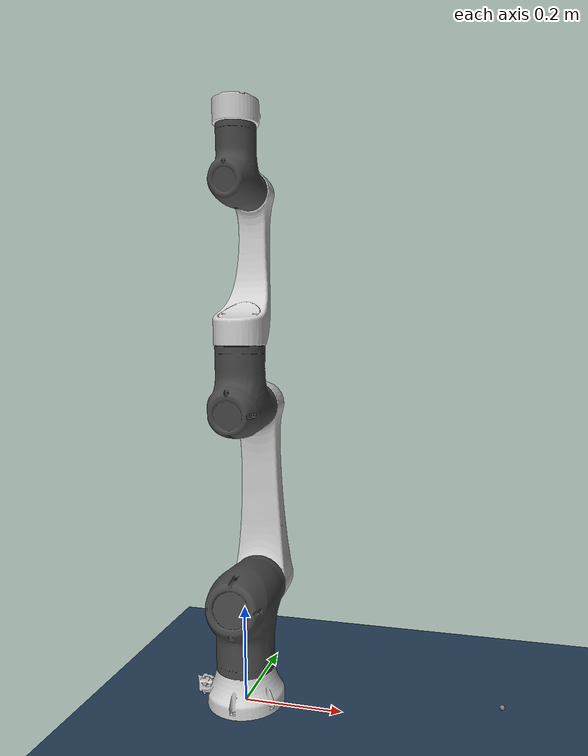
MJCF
<mujoco model="robot scene">
  <option cone="elliptic" impratio="10"/>
  <option integrator="implicitfast"/>

  <include file="elfin5.xml"/>

  <statistic center="0.4 0 0.4" extent="1"/>

  <visual>
    <headlight diffuse="0.6 0.6 0.6" ambient="0.1 0.1 0.1" specular="0 0 0"/>
    <rgba haze="0.15 0.25 0.35 1"/>
    <global azimuth="120" elevation="-20"/>
  </visual>

  <asset>
    <texture type="skybox" builtin="gradient" rgb1="0.3 0.5 0.7" rgb2="0 0 0" width="512" height="3072"/>
    <texture type="2d" name="groundplane" builtin="checker" mark="edge" rgb1="0.2 0.3 0.4" rgb2="0.1 0.2 0.3"
      markrgb="0.8 0.8 0.8" width="300" height="300"/>
    <material name="groundplane" texture="groundplane" texuniform="true" texrepeat="5 5" reflectance="0.2"/>
  </asset>

  <worldbody>
    <light pos="0 0 1.5" dir="0 0 -1" directional="true"/>
    <geom name="floor" size="0 0 0.05" type="plane" material="groundplane"/>
	<site name="prop_site" pos="0.51 0 0.052"/>
  </worldbody>
  <keyframe>
	  <key name="home"
		  ctrl="0 0.48 -1.5708 0 1.5708 0"/>
  </keyframe>
</mujoco>

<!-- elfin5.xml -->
<mujoco model="elfin5">
  <compiler angle="radian" meshdir="assets" autolimits="true"/>
  <option cone="elliptic" impratio="10"/>
  <option integrator="implicitfast"/>

  <default>
    <default class="elfin5">
      <material specular="0.5" shininess="0.25"/>
      <joint axis="0 0 1" range="-3.14 3.14" armature="0.1"/>
      <position ctrlrange="-3.14 3.14"/>
      <general biastype="affine" ctrlrange="-3.14 3.14" gainprm="5000" biasprm="0 -5000 -500"/>
      <default class="size4">
        <joint damping="10"/>
        <general forcerange="-200 200"/>
        <default class="size4_235">
          <joint range="-2.35 2.35"/>
          <general ctrlrange="-2.35 2.35"/>
        </default>
        <default class="size4_261">
          <joint range="-2.61 2.61"/>
          <general ctrlrange="-2.61 2.61"/>
        </default>
      </default>
      <default class="size3">
        <joint damping="5"/>
        <general forcerange="-104 104"/>
      </default>
      <default class="size2">
        <joint damping="2"/>
        <general forcerange="-34 34"/>
        <default class="size2_256">
          <joint range="-2.56 2.56"/>
          <general ctrlrange="-2.56 2.56"/>
        </default>
      </default>
      <default class="visual">
        <geom type="mesh" contype="0" conaffinity="0" group="2"/>
      </default>
      <default class="collision">
        <geom type="mesh" group="3"/>
        <default class="eef_collision">
          <geom type="cylinder"/>
        </default>
      </default>
      <site size="0.001" rgba="0.5 0.5 0.5 0.3" group="4"/>
    </default>
  </default>

  <asset>
    <material class="elfin5" name="black" rgba="0.033 0.033 0.033 1"/>
    <material class="elfin5" name="jointgray" rgba="0.278 0.278 0.278 1"/>
    <material class="elfin5" name="linkgray" rgba="0.82 0.82 0.82 1"/>
    <material class="elfin5" name="urblue" rgba="0.49 0.678 0.8 1"/>

    <mesh file="elfin_base.obj"/>
    <mesh file="elfin_link1.obj"/>
    <mesh file="elfin_link2.obj"/>
    <mesh file="elfin_link3.obj"/>
    <mesh file="elfin_link4.obj"/>
    <mesh file="elfin_link5.obj"/>
    <mesh file="elfin_link6.obj"/>
  </asset>

  <worldbody>
    <light name="spotlight" mode="targetbodycom" target="elfin_link5" pos="0 -1 2"/>
    <body name="elfin_base" pos="0 0 0" quat="1 0 0 -1" childclass="elfin5">
      <inertial mass="2.13370989" pos="0.00022102 0.0013404 0.025529" diaginertia="0.0041550303 0.0040358799 0.0070803951"/>
      <geom mesh="elfin_base" material="linkgray" class="visual"/>
      <body name="elfin_link1" pos="0 0 0.0735">
        <inertial pos="-0.021815 -1.1609E-05 0.095394" mass="7.96222548" diaginertia="0.0222824535 0.0401380494 0.0473608317"/>
        <joint name="shoulder_pan_joint" class="size4" axis="0 0 1"/>
        <geom mesh="elfin_link1" material="jointgray" class="visual"/>
		<geom name="elfin/link1" mesh="elfin_link1" class="collision"/>
		<geom name="base_pan" class="collision" type="cylinder" size="0.08 0.036" pos="0 0 -0.036"/>
        <body name="elfin_link2" pos="-0.078 0 0.1465" euler="1.3734 -1.5708 -1.5708">
          <inertial pos="-0.15508 0.031021 0.052499" mass="3.73459563" diaginertia="0.0051960204 0.091957473 0.0909910446"/>
          <joint name="shoulder_lift_joint" class="size4_235" axis="0 0 1"/>
          <geom mesh="elfin_link2" material="linkgray" class="visual"/>
		  <geom name="elfin/link2" mesh="elfin_link2" class="collision"/>
          <body name="elfin_link3" pos="-0.37262 0.074541 -0.0060028" euler="0 0 1.3734">
            <inertial pos="1.1184E-05 0.041481 -0.052586" mass="4.71497847" diaginertia="0.0163101015 0.0098219049 0.0201630843"/>
            <joint name="elbow_joint" class="size4_261" axis="0 0 -1"/>
            <geom mesh="elfin_link3" material="jointgray" class="visual"/>
			<geom name="elfin/link3" mesh="elfin_link3" class="collision"/>
            <body name="elfin_link4" pos="0 0.119 -0.072" euler="-1.5708 0 1.5708">
              <inertial pos="-0.058961 3.7945E-05 0.13807" mass="1.46783034"
                diaginertia="0.0167614269 0.0187714101 0.004072002"/>
              <joint name="wrist_1_joint" class="size3" axis="0 0 1"/>
              <geom mesh="elfin_link4" material="linkgray" class="visual"/>
			  <geom name="elfin/link4" mesh="elfin_link4" class="collision"/>
              <body name="elfin_link5" pos="-0.0605 0 0.301" euler="0 -1.5708 1.5708">
                <inertial pos="3.4043E-06 -0.036593 -0.044531" mass="2.49795291"
                  diaginertia="0.0060069291 0.0034992705 0.0076218249"/>
                <joint name="wrist_2_joint" class="size2_256" axis="0 0 -1"/>
				<geom mesh="elfin_link5" material="jointgray" class="visual"/>
				<geom name="elfin/link5" mesh="elfin_link5" class="collision"/>
                <body name="elfin_link6" pos="0 -0.1005 -0.0605" euler="1.5708 0 -1.5708">
                  <inertial pos="-0.007255 -3.2028E-05 0.033062" mass="0.45519408"
                    diaginertia="0.0005996763 0.0006024264 0.0006053928"/>
                  <joint name="wrist_3_joint" class="size2" axis="0 0 1"/>
                  <geom mesh="elfin_link6" material="linkgray" class="visual"/>
				  <geom name="elfin/link6" mesh="elfin_link6" class="collision"/>
                  <site name="attachment_site" pos="0 0 0.054"/>
                </body>
              </body>
            </body>
          </body>
        </body>
      </body>
    </body>
  </worldbody>

  <actuator>
    <general class="size4" name="shoulder_pan" joint="shoulder_pan_joint"/>
    <general class="size4_235" name="shoulder_lift" joint="shoulder_lift_joint"/>
    <general class="size4_261" name="elbow" joint="elbow_joint"/>
    <general class="size3" name="wrist_1" joint="wrist_1_joint"/>
    <general class="size2_256" name="wrist_2" joint="wrist_2_joint"/>
    <general class="size2" name="wrist_3" joint="wrist_3_joint"/>
  </actuator>

</mujoco>
